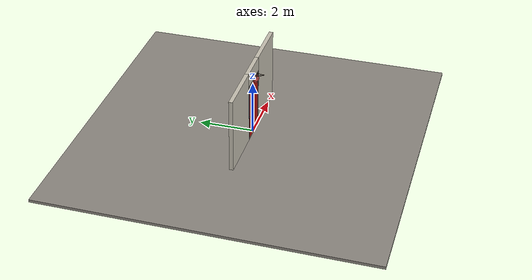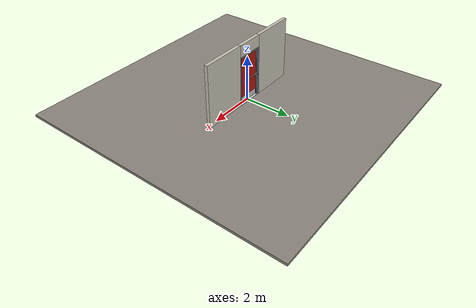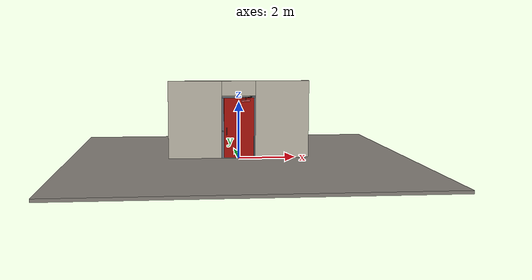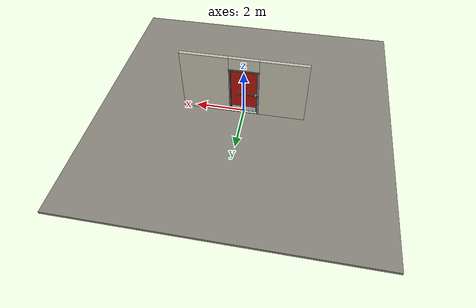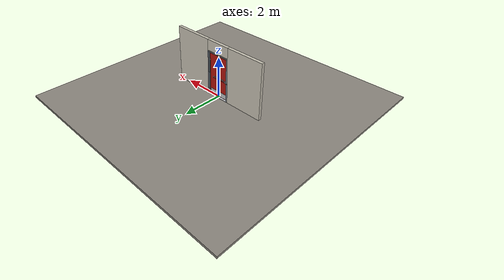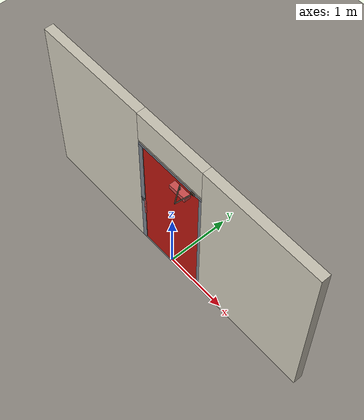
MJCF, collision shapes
<?xml version="1.0" ?>
<mujoco model="db0022_swing_single_full">
  <compiler angle="radian" meshdir="../../hardware" texturedir="../../textures" autolimits="true" inertiafromgeom="false"/>
  <option timestep="0.002" integrator="implicitfast" cone="elliptic" impratio="10" noslip_iterations="3">
    <flag multiccd="enable"/>
  </option>
  <size memory="16M"/>
  <default>
    <geom condim="4" solref="0.005 1" solimp="0.95 0.99 0.001"/>
    <joint solreflimit="0.005 1" solimplimit="0.95 0.99 0.001"/>
    <tendon solreflimit="0.005 1"/>
    <equality solref="0.002 1"/>
  </default>
  <visual>
    <headlight ambient="0.4 0.4 0.4" diffuse="0.7 0.7 0.7" specular="0.2 0.2 0.2"/>
    <quality shadowsize="4096"/>
    <map znear="0.01" zfar="60"/>
  </visual>
  <asset>
    <mesh name="closer_body_fdc4667657" file="closer_body_fdc4667657.obj"/>
    <mesh name="exit_sign_a6449bfa2c" file="exit_sign_a6449bfa2c.obj"/>
    <mesh name="hinge_ed08f20e7f" file="hinge_ed08f20e7f.obj"/>
    <mesh name="hinge_jamb_1278ce3e25" file="hinge_jamb_1278ce3e25.obj"/>
    <mesh name="pull_f8d79d6331" file="pull_f8d79d6331.obj"/>
    <mesh name="touchbar_pad_53c3bea3f4" file="touchbar_pad_53c3bea3f4.obj"/>
    <material name="mat_floor" rgba="0.55 0.53 0.5 1" specular="0.2" shininess="0.15" reflectance="0"/>
    <material name="mat_wall" rgba="0.78 0.76 0.7 1" specular="0.2" shininess="0.1" reflectance="0"/>
    <material name="mat_leaf" rgba="0.7 0.08 0.05 1" specular="0.23" shininess="0.41" reflectance="0.02"/>
    <material name="mat_hinge" rgba="0.65 0.66 0.68 1" specular="0.74" shininess="0.5" reflectance="0.36"/>
    <material name="mat_op_stainless" rgba="0.75 0.76 0.77 1" specular="0.8" shininess="0.65" reflectance="0.4"/>
    <material name="mat_bolt" rgba="0.75 0.76 0.77 1" specular="0.8" shininess="0.65" reflectance="0.4"/>
    <material name="mat_frame" rgba="0.45 0.48 0.52 1" specular="0.32" shininess="0.6" reflectance="0.08"/>
    <material name="mat_threshold" rgba="0.8 0.81 0.83 1" specular="0.8" shininess="0.6" reflectance="0.4"/>
    <material name="mat_closer" rgba="0.22 0.17 0.13 1" specular="0.8" shininess="0.6" reflectance="0.4"/>
    <material name="mat_kick" rgba="0.75 0.76 0.77 1" specular="0.8" shininess="0.65" reflectance="0.4"/>
    <material name="mat_exit_sign" rgba="0.85 0.1 0.1 1" specular="0.2" shininess="0.6" reflectance="0"/>
    <material name="mat_sign_bracket" rgba="0.8 0.81 0.83 1" specular="0.8" shininess="0.6" reflectance="0.4"/>
    <texture name="skybox" type="skybox" builtin="gradient" rgb1="0.6 0.7 0.85" rgb2="0.9 0.92 0.95" width="256" height="256"/>
  </asset>
  <worldbody>
    <light name="sun" pos="1.5 -2.5 4" dir="-0.3 0.5 -0.8" directional="true" diffuse="0.8 0.8 0.8" specular="0.3 0.3 0.3" castshadow="true"/>
    <light name="fill" pos="-1.5 2.5 3" dir="0.3 -0.5 -0.7" directional="true" diffuse="0.35 0.35 0.4" castshadow="false"/>
    <camera name="robot_view" pos="0 -2.594313 1.812087" xyaxes="1 0 0 0 0.26963 0.962964" fovy="52"/>
    <camera name="far_view" pos="0 2.681312 1.812087" xyaxes="-1 0 0 0 -0.26963 0.962964" fovy="52"/>
    <camera name="iso" pos="-2.004737 -2.172262 2.234138" xyaxes="0.741536 -0.670913 0 0.242917 0.268487 0.932151" fovy="46"/>
    <camera name="detail_handle" pos="-0.263 -0.897 1.245" xyaxes="0.97561 0.219512 0 -0.070934 0.315262 0.94635" fovy="38"/>
    <geom name="floor" type="box" size="6 6 0.05" pos="0 0 -0.05" material="mat_floor" group="0" contype="1" conaffinity="1" friction="0.8 0.005 0.0001" density="2400"/>
    <geom name="wall_left" type="box" size="0.9415 0.0725 1.3735" pos="-1.5585 0.0435 1.3735" material="mat_wall" group="0" contype="1" conaffinity="1" friction="0.6 0.005 0.0001" density="800"/>
    <geom name="wall_right" type="box" size="0.9565 0.0725 1.3735" pos="1.5435 0.0435 1.3735" material="mat_wall" group="0" contype="1" conaffinity="1" friction="0.6 0.005 0.0001" density="800"/>
    <geom name="wall_header" type="box" size="0.602 0.0725 0.26" pos="-0.015 0.0435 2.487" material="mat_wall" group="0" contype="1" conaffinity="1" friction="0.6 0.005 0.0001" density="800"/>
    <geom name="hinge_0_jamb" type="mesh" mesh="hinge_jamb_1278ce3e25" pos="0.534 -0.029 0.267" quat="0 0 1 0" material="mat_hinge" group="1" contype="0" conaffinity="0" density="7850"/>
    <geom name="hinge_1_jamb" type="mesh" mesh="hinge_jamb_1278ce3e25" pos="0.534 -0.029 0.832333" quat="0 0 1 0" material="mat_hinge" group="1" contype="0" conaffinity="0" density="7850"/>
    <geom name="hinge_2_jamb" type="mesh" mesh="hinge_jamb_1278ce3e25" pos="0.534 -0.029 1.397667" quat="0 0 1 0" material="mat_hinge" group="1" contype="0" conaffinity="0" density="7850"/>
    <geom name="hinge_3_jamb" type="mesh" mesh="hinge_jamb_1278ce3e25" pos="0.534 -0.029 1.963" quat="0 0 1 0" material="mat_hinge" group="1" contype="0" conaffinity="0" density="7850"/>
    <geom name="jamb_hinge" type="box" size="0.025 0.0725 1.0735" pos="0.562 0.0435 1.0735" material="mat_frame" group="0" contype="1" conaffinity="1" friction="0.6 0.005 0.0001" density="300"/>
    <geom name="strike_965_wall_n" type="box" size="0.04 0.0305 0.02" pos="-0.577 0.0855 0.965" material="mat_frame" group="0" contype="1" conaffinity="1" friction="0.6 0.005 0.0001" density="300"/>
    <geom name="strike_965_wall_p" type="box" size="0.04 0.008 0.02" pos="-0.577 0.025 0.965" material="mat_frame" group="0" contype="1" conaffinity="1" friction="0.6 0.005 0.0001" density="300"/>
    <geom name="strike_965_ramp" type="box" size="0.04 0.034482 0.02" pos="-0.585281 -0.0044 0.965" quat="0.989198 0 0 -0.146587" material="mat_frame" group="0" contype="1" conaffinity="1" friction="0.12 0.005 0.0001" density="300"/>
    <geom name="strike_965_back" type="box" size="0.0285 0.011 0.02" pos="-0.5885 0.044 0.965" material="mat_frame" group="0" contype="1" conaffinity="1" friction="0.6 0.005 0.0001" density="300"/>
    <geom name="jamb_strike_0" type="box" size="0.04 0.0725 0.4725" pos="-0.577 0.0435 0.4725" material="mat_frame" group="0" contype="1" conaffinity="1" friction="0.6 0.005 0.0001" density="300"/>
    <geom name="jamb_strike_1" type="box" size="0.04 0.0725 0.581" pos="-0.577 0.0435 1.566" material="mat_frame" group="0" contype="1" conaffinity="1" friction="0.6 0.005 0.0001" density="300"/>
    <geom name="jamb_head" type="box" size="0.602 0.0725 0.025" pos="-0.015 0.0435 2.172" material="mat_frame" group="0" contype="1" conaffinity="1" friction="0.6 0.005 0.0001" density="300"/>
    <geom name="head_stud" type="box" size="0.602 0.0725 0.015" pos="-0.015 0.0435 2.212" material="mat_wall" group="0" contype="1" conaffinity="1" friction="0.6 0.005 0.0001" density="500"/>
    <geom name="stop_hinge" type="box" size="0.0055 0.016 1.0735" pos="0.5315 0.0385 1.0735" material="mat_frame" group="0" contype="1" conaffinity="1" friction="0.6 0.005 0.0001" density="300"/>
    <geom name="stop_strike" type="box" size="0.0055 0.016 0.45875" pos="-0.5315 0.0385 0.45875" material="mat_frame" group="0" contype="1" conaffinity="1" friction="0.6 0.005 0.0001" density="300"/>
    <geom name="stop_strike_1" type="box" size="0.0055 0.016 0.56725" pos="-0.5315 0.0385 1.57975" material="mat_frame" group="0" contype="1" conaffinity="1" friction="0.6 0.005 0.0001" density="300"/>
    <geom name="stop_head" type="box" size="0.537 0.016 0.0055" pos="0 0.0385 2.1415" material="mat_frame" group="0" contype="1" conaffinity="1" friction="0.6 0.005 0.0001" density="300"/>
    <geom name="threshold" type="box" size="0.587 0.0725 0.0065" pos="0 0.0435 0.0065" material="mat_threshold" group="0" contype="1" conaffinity="1" friction="0.5 0.005 0.0001" density="2700"/>
    <geom name="closer_bracket" type="box" size="0.03 0.012 0.014" pos="0.437 -0.041 2.177" material="mat_closer" group="1" contype="0" conaffinity="0" density="2700"/>
    <geom name="exit_sign" type="mesh" mesh="exit_sign_a6449bfa2c" pos="0 0.15 2.447" material="mat_exit_sign" group="2" contype="0" conaffinity="0" density="500"/>
    <geom name="exit_sign_bracket" type="box" size="0.05775 0.005 0.035" pos="0 0.1205 2.447" material="mat_sign_bracket" group="2" contype="0" conaffinity="0" density="7850"/>
    <site name="approach_point" pos="0 -1.5 0" quat="1 0 0 0" size="0.05" rgba="0.2 0.9 0.2 0.5" group="4"/>
    <site name="goal_point" pos="0 1.5 0" quat="1 0 0 0" size="0.05" rgba="0.2 0.9 0.2 0.5" group="4"/>
    <site name="door_plane_center" pos="0 0 1.0735" quat="1 0 0 0" size="0.02" rgba="0.2 0.9 0.2 0.5" group="4"/>
    <body name="leaf" pos="0.537 0 0">
      <inertial pos="-0.498372 -0.012747 1.218928" mass="61.424493" quat="0.461965 0.483697 0.527624 -0.523679" diaginertia="5.514015825 28.867597736 34.263905461"/>
      <joint name="leaf_hinge" type="hinge" axis="0 0 1" pos="-0.003 -0.029 0" limited="true" range="0 1.745329" damping="12.49954" frictionloss="0.909129" stiffness="15.508058" springref="-1.827437" armature="0.02"/>
      <geom name="leaf_slab" type="box" size="0.5335 0.022 1.063" pos="-0.5365 0 1.08" material="mat_leaf" group="0" contype="1" conaffinity="1" friction="0.4 0.005 0.0001" density="1"/>
      <geom name="hinge_0" type="mesh" mesh="hinge_ed08f20e7f" pos="-0.003 -0.029 0.267" quat="0 0 1 0" material="mat_hinge" group="1" contype="0" conaffinity="0" density="7850"/>
      <geom name="hinge_1" type="mesh" mesh="hinge_ed08f20e7f" pos="-0.003 -0.029 0.832333" quat="0 0 1 0" material="mat_hinge" group="1" contype="0" conaffinity="0" density="7850"/>
      <geom name="hinge_2" type="mesh" mesh="hinge_ed08f20e7f" pos="-0.003 -0.029 1.397667" quat="0 0 1 0" material="mat_hinge" group="1" contype="0" conaffinity="0" density="7850"/>
      <geom name="hinge_3" type="mesh" mesh="hinge_ed08f20e7f" pos="-0.003 -0.029 1.963" quat="0 0 1 0" material="mat_hinge" group="1" contype="0" conaffinity="0" density="7850"/>
      <geom name="leaf_exit_device_rail" type="box" size="0.366775 0.006 0.025" pos="-0.623225 0.028 0.965" material="mat_op_stainless" group="0" contype="1" conaffinity="1" friction="0.6 0.005 0.0001" density="3000"/>
      <geom name="leaf_exit_device_rail_end_n" type="box" size="0.01 0.0325 0.025" pos="-0.98 0.0545 0.965" material="mat_op_stainless" group="0" contype="1" conaffinity="1" friction="0.6 0.005 0.0001" density="3000"/>
      <geom name="leaf_exit_device_rail_end_p" type="box" size="0.01 0.0325 0.025" pos="-0.26645 0.0545 0.965" material="mat_op_stainless" group="0" contype="1" conaffinity="1" friction="0.6 0.005 0.0001" density="3000"/>
      <geom name="leaf_exit_device_case" type="box" size="0.034 0.034125 0.0375" pos="-1.024 0.056125 0.965" material="mat_op_stainless" group="0" contype="1" conaffinity="1" friction="0.6 0.005 0.0001" density="3000"/>
      <geom name="leaf_far_pull_n" type="mesh" mesh="pull_f8d79d6331" pos="-0.98 -0.022 0.965" quat="0 0 -0.707107 0.707107" material="mat_op_stainless" group="1" contype="0" conaffinity="0" density="3000"/>
      <geom name="leaf_far_pull_col_n" type="capsule" size="0.0125 0.13" pos="-0.98 -0.097 0.965" material="mat_op_stainless" group="3" contype="1" conaffinity="1" rgba="0.8 0.3 0.3 0.25" friction="0.7 0.01 0.0001" density="3000"/>
      <geom name="closer_body" type="mesh" mesh="closer_body_fdc4667657" pos="-0.3 -0.022 2.046" quat="0 0 -0.707107 0.707107" material="mat_closer" group="1" contype="0" conaffinity="0" density="2000"/>
      <geom name="closer_body_col" type="box" size="0.145 0.05 0.035" pos="-0.3 -0.072 2.046" material="mat_closer" group="3" contype="1" conaffinity="1" rgba="0.8 0.3 0.3 0.25" friction="0.6 0.005 0.0001" density="2000"/>
      <geom name="closer_pinion_shaft" type="cylinder" size="0.008 0.0655" pos="-0.3 -0.072 2.1115" material="mat_closer" group="1" contype="0" conaffinity="0" density="2700"/>
      <geom name="kick_plate_p" type="box" size="0.5035 0.0008 0.125" pos="-0.5365 0.0228 0.152" material="mat_kick" group="2" contype="0" conaffinity="0" density="7900"/>
      <site name="leaf_far_pull_grip_n" pos="-0.98 -0.097 0.965" quat="1 0 0 0" size="0.012" rgba="0.2 0.9 0.2 0.5" group="4"/>
      <site name="leaf_edge_mid" pos="-1.07 0 1.063" quat="1 0 0 0" size="0.02" rgba="0.2 0.9 0.2 0.5" group="4"/>
      <body name="leaf_exit_device" pos="-0.623225 0.022 0.965">
        <inertial pos="0 0.05 0" mass="5.569155" quat="0 0 0.707107 0.707107" diaginertia="0.001357482 0.219807588 0.220329696"/>
        <joint name="leaf_exit_device_slide" type="slide" axis="0 -1 0" limited="true" range="0 0.016" damping="165.686282" frictionloss="0.5" stiffness="1200" springref="-0.015" armature="0.15"/>
        <geom name="leaf_exit_device_pad" type="mesh" mesh="touchbar_pad_53c3bea3f4" pos="0 0 0" quat="0 0 0.707107 0.707107" material="mat_op_stainless" group="1" contype="0" conaffinity="0" density="3000"/>
        <geom name="leaf_exit_device_pad_col" type="box" size="0.343775 0.015 0.0225" pos="0 0.05 0" material="mat_op_stainless" group="3" contype="1" conaffinity="1" rgba="0.8 0.3 0.3 0.25" friction="0.8 0.01 0.0001" density="3000"/>
        <site name="leaf_exit_device_push" pos="0 0.065 0" quat="1 0 0 0" size="0.015" rgba="0.2 0.9 0.2 0.5" group="4"/>
      </body>
      <body name="leaf_latch_bolt" pos="-1.07 0.044 0.965">
        <inertial pos="0.0055 0 0" mass="0.102826" quat="0.92388 0.382683 0 0" diaginertia="0.000004365 0.000018287 0.000018287"/>
        <joint name="leaf_latch_bolt_slide" type="slide" axis="1 0 0" limited="true" range="0 0.019" damping="2" frictionloss="0.3" stiffness="800" springref="-0.01" armature="0.1"/>
        <geom name="leaf_latch_bolt_capsule" type="capsule" size="0.0095 0.015" pos="0.0055 0 0" quat="0.707107 0 -0.707107 0" material="mat_bolt" group="0" contype="1" conaffinity="1" friction="0.2 0.005 0.0001" density="8500"/>
      </body>
      <body name="closer_arm_main" pos="-0.3 -0.072 2.177" quat="0.890947 0 0 -0.454107">
        <inertial pos="0.14 0 0" mass="0.12096" quat="1 0 0 0" diaginertia="0.000003588 0.00079128 0.000792852"/>
        <joint name="closer_pinion" type="hinge" axis="0 0 1" limited="false" damping="0.01" armature="0.002"/>
        <geom name="closer_arm_main_geom" type="box" size="0.14 0.008 0.005" pos="0.14 0 0" material="mat_closer" group="1" contype="0" conaffinity="0" density="2700"/>
        <body name="closer_arm_fore" pos="0.28 0 0" quat="0.373215 0 0 0.927745">
          <inertial pos="0.128088 0 0" mass="0.076531" quat="1 0 0 0" diaginertia="0.000001771 0.000437665 0.000438201"/>
          <joint name="closer_elbow" type="hinge" axis="0 0 1" limited="false" damping="0.01" armature="0.002"/>
          <geom name="closer_arm_fore_geom" type="box" size="0.1125 0.007 0.004" pos="0.1125 0 0" material="mat_closer" group="1" contype="0" conaffinity="0" density="2700"/>
          <geom name="closer_fore_neck" type="box" size="0.0175 0.003 0.003" pos="0.2425 0 0" material="mat_closer" group="1" contype="0" conaffinity="0" density="2700"/>
          <geom name="closer_fore_pivot" type="cylinder" size="0.005 0.012" pos="0.26 0 0" material="mat_closer" group="1" contype="0" conaffinity="0" density="2700"/>
        </body>
      </body>
    </body>
  </worldbody>
  <tendon>
    <fixed name="leaf_latch_bolt_coupling" limited="true" range="0 10">
      <joint joint="leaf_latch_bolt_slide" coef="1"/>
      <joint joint="leaf_exit_device_slide" coef="-1.357143"/>
    </fixed>
  </tendon>
  <equality>
    <connect name="closer_arm_connect" body1="closer_arm_fore" body2="world" anchor="0.26 0 0" active="true"/>
  </equality>
  <contact>
    <exclude body1="closer_arm_main" body2="leaf"/>
    <exclude body1="closer_arm_fore" body2="leaf"/>
    <exclude body1="closer_arm_main" body2="closer_arm_fore"/>
  </contact>
  <sensor>
    <jointpos name="leaf_hinge_pos" joint="leaf_hinge"/>
    <jointvel name="leaf_hinge_vel" joint="leaf_hinge"/>
    <jointpos name="leaf_exit_device_slide_pos" joint="leaf_exit_device_slide"/>
    <jointvel name="leaf_exit_device_slide_vel" joint="leaf_exit_device_slide"/>
    <jointpos name="leaf_latch_bolt_slide_pos" joint="leaf_latch_bolt_slide"/>
    <jointvel name="leaf_latch_bolt_slide_vel" joint="leaf_latch_bolt_slide"/>
  </sensor>
</mujoco>
